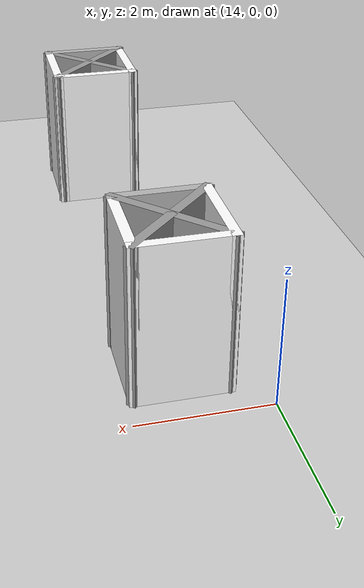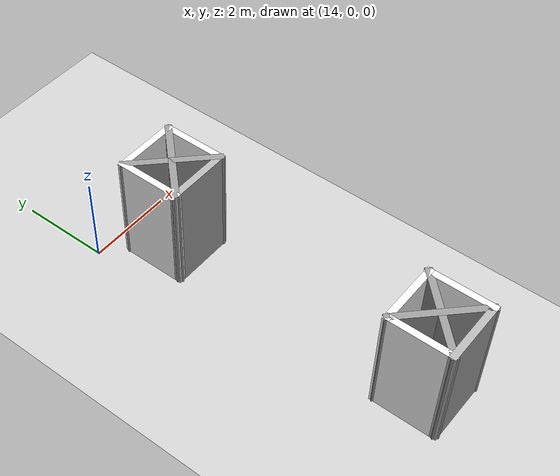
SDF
<sdf version="1.7">
 <world name="default">
  <model name="ground_plane">
   <static>1</static>
   <link name="link">
    <collision name="collision">
     <geometry><plane><normal>0 0 1</normal><size>100 100</size></plane></geometry>
     <surface>
      <contact><collide_bitmask>65535</collide_bitmask></contact>
      <friction><ode><mu>100</mu><mu2>50</mu2></ode></friction>
     </surface>
    </collision>
    <visual name="visual">
     <cast_shadows>0</cast_shadows>
     <geometry><plane><normal>0 0 1</normal><size>100 100</size></plane></geometry>
     <material>
      <script><uri>file://media/materials/scripts/gazebo.material</uri><name>Gazebo/Grey</name></script>
     </material>
    </visual>
   </link>
  </model>
  <model name="Untitled_1_clone_3_clone_clone_8">
   <link name="Wall_10">
    <pose>4.92197 -3.43197 0 0 -0 1.5708</pose>
    <inertial>
     <mass>1</mass>
     <inertia><ixx>1</ixx><ixy>0</ixy><ixz>0</ixz><iyy>1</iyy><iyz>0</iyz><izz>1</izz></inertia>
    </inertial>
    <visual name="Wall_10_Visual">
     <pose>0 0 1.25 0 -0 0</pose>
     <geometry><box><size>1.5 0.15 2.5</size></box></geometry>
     <material>
      <script><uri>file://media/materials/scripts/gazebo.material</uri><name>Gazebo/CoM</name></script>
      <ambient>1 1 1 1</ambient>
      <shader type="pixel"><normal_map>__default__</normal_map></shader>
      <diffuse>1 1 1 1</diffuse>
      <specular>0 0 0 1</specular>
      <emissive>0 0 0 1</emissive>
     </material>
     <meta><layer>0</layer></meta>
    </visual>
    <collision name="Wall_10_Collision">
     <pose>0 0 1.25 0 -0 0</pose>
     <geometry><box><size>1.5 0.15 2.5</size></box></geometry>
     <surface>
      <friction>
       <ode><mu>1</mu><mu2>1</mu2><fdir1>0 0 0</fdir1><slip1>0</slip1><slip2>0</slip2></ode>
       <torsional>
        <coefficient>1</coefficient>
        <patch_radius>0</patch_radius>
        <surface_radius>0</surface_radius>
        <use_patch_radius>1</use_patch_radius>
        <ode><slip>0</slip></ode>
       </torsional>
      </friction>
      <bounce><restitution_coefficient>0</restitution_coefficient><threshold>1e+06</threshold></bounce>
      <contact>
       <collide_without_contact>0</collide_without_contact>
       <collide_without_contact_bitmask>1</collide_without_contact_bitmask>
       <collide_bitmask>1</collide_bitmask>
       <ode>
        <soft_cfm>0</soft_cfm>
        <soft_erp>0.2</soft_erp>
        <kp>1e+13</kp>
        <kd>1</kd>
        <max_vel>0.01</max_vel>
        <min_depth>0</min_depth>
       </ode>
       <bullet>
        <split_impulse>1</split_impulse>
        <split_impulse_penetration_threshold>-0.01</split_impulse_penetration_threshold>
        <soft_cfm>0</soft_cfm>
        <soft_erp>0.2</soft_erp>
        <kp>1e+13</kp>
        <kd>1</kd>
       </bullet>
      </contact>
     </surface>
    </collision>
   </link>
   <link name="Wall_11">
    <pose>5.59697 -3.43197 0 0 0 -0.785398</pose>
    <visual name="Wall_11_Visual">
     <pose>0 0 1.25 0 -0 0</pose>
     <geometry><box><size>2.05919 0.15 2.5</size></box></geometry>
     <material>
      <script><uri>file://media/materials/scripts/gazebo.material</uri><name>Gazebo/Grey</name></script>
      <ambient>1 1 1 1</ambient>
      <shader type="pixel"/>
     </material>
     <meta><layer>0</layer></meta>
    </visual>
    <collision name="Wall_11_Collision">
     <pose>0 0 1.25 0 -0 0</pose>
     <geometry><box><size>2.05919 0.15 2.5</size></box></geometry>
     <surface>
      <friction>
       <ode><mu>1</mu><mu2>1</mu2><fdir1>0 0 0</fdir1><slip1>0</slip1><slip2>0</slip2></ode>
       <torsional>
        <coefficient>1</coefficient>
        <patch_radius>0</patch_radius>
        <surface_radius>0</surface_radius>
        <use_patch_radius>1</use_patch_radius>
        <ode><slip>0</slip></ode>
       </torsional>
      </friction>
      <bounce><restitution_coefficient>0</restitution_coefficient><threshold>1e+06</threshold></bounce>
      <contact>
       <collide_without_contact>0</collide_without_contact>
       <collide_without_contact_bitmask>1</collide_without_contact_bitmask>
       <collide_bitmask>1</collide_bitmask>
       <ode>
        <soft_cfm>0</soft_cfm>
        <soft_erp>0.2</soft_erp>
        <kp>1e+13</kp>
        <kd>1</kd>
        <max_vel>0.01</max_vel>
        <min_depth>0</min_depth>
       </ode>
       <bullet>
        <split_impulse>1</split_impulse>
        <split_impulse_penetration_threshold>-0.01</split_impulse_penetration_threshold>
        <soft_cfm>0</soft_cfm>
        <soft_erp>0.2</soft_erp>
        <kp>1e+13</kp>
        <kd>1</kd>
       </bullet>
      </contact>
     </surface>
    </collision>
   </link>
   <link name="Wall_13">
    <pose>5.59697 -3.43197 0 0 -0 0.785398</pose>
    <visual name="Wall_13_Visual">
     <pose>0 0 1.25 0 -0 0</pose>
     <geometry><box><size>2.05919 0.15 2.5</size></box></geometry>
     <material>
      <script><uri>file://media/materials/scripts/gazebo.material</uri><name>Gazebo/Grey</name></script>
      <ambient>1 1 1 1</ambient>
      <shader type="pixel"/>
     </material>
     <meta><layer>0</layer></meta>
    </visual>
    <collision name="Wall_13_Collision">
     <pose>0 0 1.25 0 -0 0</pose>
     <geometry><box><size>2.05919 0.15 2.5</size></box></geometry>
     <surface>
      <friction>
       <ode><mu>1</mu><mu2>1</mu2><fdir1>0 0 0</fdir1><slip1>0</slip1><slip2>0</slip2></ode>
       <torsional>
        <coefficient>1</coefficient>
        <patch_radius>0</patch_radius>
        <surface_radius>0</surface_radius>
        <use_patch_radius>1</use_patch_radius>
        <ode><slip>0</slip></ode>
       </torsional>
      </friction>
      <bounce><restitution_coefficient>0</restitution_coefficient><threshold>1e+06</threshold></bounce>
      <contact>
       <collide_without_contact>0</collide_without_contact>
       <collide_without_contact_bitmask>1</collide_without_contact_bitmask>
       <collide_bitmask>1</collide_bitmask>
       <ode>
        <soft_cfm>0</soft_cfm>
        <soft_erp>0.2</soft_erp>
        <kp>1e+13</kp>
        <kd>1</kd>
        <max_vel>0.01</max_vel>
        <min_depth>0</min_depth>
       </ode>
       <bullet>
        <split_impulse>1</split_impulse>
        <split_impulse_penetration_threshold>-0.01</split_impulse_penetration_threshold>
        <soft_cfm>0</soft_cfm>
        <soft_erp>0.2</soft_erp>
        <kp>1e+13</kp>
        <kd>1</kd>
       </bullet>
      </contact>
     </surface>
    </collision>
   </link>
   <link name="Wall_7">
    <pose>5.59697 -2.75697 0 0 -0 0</pose>
    <inertial>
     <mass>1</mass>
     <inertia><ixx>1</ixx><ixy>0</ixy><ixz>0</ixz><iyy>1</iyy><iyz>0</iyz><izz>1</izz></inertia>
    </inertial>
    <visual name="Wall_7_Visual">
     <pose>0 0 1.25 0 -0 0</pose>
     <geometry><box><size>1.5 0.15 2.5</size></box></geometry>
     <material>
      <script><uri>file://media/materials/scripts/gazebo.material</uri><name>Gazebo/CoM</name></script>
      <ambient>1 1 1 1</ambient>
      <shader type="pixel"><normal_map>__default__</normal_map></shader>
      <diffuse>1 1 1 1</diffuse>
      <specular>0 0 0 1</specular>
      <emissive>0 0 0 1</emissive>
     </material>
     <meta><layer>0</layer></meta>
    </visual>
    <collision name="Wall_7_Collision">
     <pose>0 0 1.25 0 -0 0</pose>
     <geometry><box><size>1.5 0.15 2.5</size></box></geometry>
     <surface>
      <friction>
       <ode><mu>1</mu><mu2>1</mu2><fdir1>0 0 0</fdir1><slip1>0</slip1><slip2>0</slip2></ode>
       <torsional>
        <coefficient>1</coefficient>
        <patch_radius>0</patch_radius>
        <surface_radius>0</surface_radius>
        <use_patch_radius>1</use_patch_radius>
        <ode><slip>0</slip></ode>
       </torsional>
      </friction>
      <bounce><restitution_coefficient>0</restitution_coefficient><threshold>1e+06</threshold></bounce>
      <contact>
       <collide_without_contact>0</collide_without_contact>
       <collide_without_contact_bitmask>1</collide_without_contact_bitmask>
       <collide_bitmask>1</collide_bitmask>
       <ode>
        <soft_cfm>0</soft_cfm>
        <soft_erp>0.2</soft_erp>
        <kp>1e+13</kp>
        <kd>1</kd>
        <max_vel>0.01</max_vel>
        <min_depth>0</min_depth>
       </ode>
       <bullet>
        <split_impulse>1</split_impulse>
        <split_impulse_penetration_threshold>-0.01</split_impulse_penetration_threshold>
        <soft_cfm>0</soft_cfm>
        <soft_erp>0.2</soft_erp>
        <kp>1e+13</kp>
        <kd>1</kd>
       </bullet>
      </contact>
     </surface>
    </collision>
   </link>
   <link name="Wall_8">
    <pose>6.27197 -3.43197 0 0 0 -1.5708</pose>
    <inertial>
     <mass>1</mass>
     <inertia><ixx>1</ixx><ixy>0</ixy><ixz>0</ixz><iyy>1</iyy><iyz>0</iyz><izz>1</izz></inertia>
    </inertial>
    <visual name="Wall_8_Visual">
     <pose>0 0 1.25 0 -0 0</pose>
     <geometry><box><size>1.5 0.15 2.5</size></box></geometry>
     <material>
      <script><uri>file://media/materials/scripts/gazebo.material</uri><name>Gazebo/CoM</name></script>
      <ambient>1 1 1 1</ambient>
      <shader type="pixel"><normal_map>__default__</normal_map></shader>
      <diffuse>1 1 1 1</diffuse>
      <specular>0 0 0 1</specular>
      <emissive>0 0 0 1</emissive>
     </material>
     <meta><layer>0</layer></meta>
    </visual>
    <collision name="Wall_8_Collision">
     <pose>0 0 1.25 0 -0 0</pose>
     <geometry><box><size>1.5 0.15 2.5</size></box></geometry>
     <surface>
      <friction>
       <ode><mu>1</mu><mu2>1</mu2><fdir1>0 0 0</fdir1><slip1>0</slip1><slip2>0</slip2></ode>
       <torsional>
        <coefficient>1</coefficient>
        <patch_radius>0</patch_radius>
        <surface_radius>0</surface_radius>
        <use_patch_radius>1</use_patch_radius>
        <ode><slip>0</slip></ode>
       </torsional>
      </friction>
      <bounce><restitution_coefficient>0</restitution_coefficient><threshold>1e+06</threshold></bounce>
      <contact>
       <collide_without_contact>0</collide_without_contact>
       <collide_without_contact_bitmask>1</collide_without_contact_bitmask>
       <collide_bitmask>1</collide_bitmask>
       <ode>
        <soft_cfm>0</soft_cfm>
        <soft_erp>0.2</soft_erp>
        <kp>1e+13</kp>
        <kd>1</kd>
        <max_vel>0.01</max_vel>
        <min_depth>0</min_depth>
       </ode>
       <bullet>
        <split_impulse>1</split_impulse>
        <split_impulse_penetration_threshold>-0.01</split_impulse_penetration_threshold>
        <soft_cfm>0</soft_cfm>
        <soft_erp>0.2</soft_erp>
        <kp>1e+13</kp>
        <kd>1</kd>
       </bullet>
      </contact>
     </surface>
    </collision>
   </link>
   <link name="Wall_9">
    <pose>5.59697 -4.10697 0 0 -0 3.14159</pose>
    <inertial>
     <mass>1</mass>
     <inertia><ixx>1</ixx><ixy>0</ixy><ixz>0</ixz><iyy>1</iyy><iyz>0</iyz><izz>1</izz></inertia>
    </inertial>
    <visual name="Wall_9_Visual">
     <pose>0 0 1.25 0 -0 0</pose>
     <geometry><box><size>1.5 0.15 2.5</size></box></geometry>
     <material>
      <script><uri>file://media/materials/scripts/gazebo.material</uri><name>Gazebo/CoM</name></script>
      <ambient>1 1 1 1</ambient>
      <shader type="pixel"><normal_map>__default__</normal_map></shader>
      <diffuse>0.7 0.7 0.7 1</diffuse>
      <specular>0.01 0.01 0.01 1</specular>
      <emissive>0 0 0 1</emissive>
     </material>
     <meta><layer>0</layer></meta>
    </visual>
    <collision name="Wall_9_Collision">
     <pose>0 0 1.25 0 -0 0</pose>
     <geometry><box><size>1.5 0.15 2.5</size></box></geometry>
     <surface>
      <friction>
       <ode><mu>1</mu><mu2>1</mu2><fdir1>0 0 0</fdir1><slip1>0</slip1><slip2>0</slip2></ode>
       <torsional>
        <coefficient>1</coefficient>
        <patch_radius>0</patch_radius>
        <surface_radius>0</surface_radius>
        <use_patch_radius>1</use_patch_radius>
        <ode><slip>0</slip></ode>
       </torsional>
      </friction>
      <bounce><restitution_coefficient>0</restitution_coefficient><threshold>1e+06</threshold></bounce>
      <contact>
       <collide_without_contact>0</collide_without_contact>
       <collide_without_contact_bitmask>1</collide_without_contact_bitmask>
       <collide_bitmask>1</collide_bitmask>
       <ode>
        <soft_cfm>0</soft_cfm>
        <soft_erp>0.2</soft_erp>
        <kp>1e+13</kp>
        <kd>1</kd>
        <max_vel>0.01</max_vel>
        <min_depth>0</min_depth>
       </ode>
       <bullet>
        <split_impulse>1</split_impulse>
        <split_impulse_penetration_threshold>-0.01</split_impulse_penetration_threshold>
        <soft_cfm>0</soft_cfm>
        <soft_erp>0.2</soft_erp>
        <kp>1e+13</kp>
        <kd>1</kd>
       </bullet>
      </contact>
     </surface>
    </collision>
   </link>
   <static>1</static>
   <pose>9.67633 -3.8493 0 0 -0 0</pose>
  </model>
  <model name="Untitled_1_clone_3_clone_clone_10">
   <link name="Wall_10">
    <pose>4.92197 -3.43197 0 0 -0 1.5708</pose>
    <inertial>
     <mass>1</mass>
     <inertia><ixx>1</ixx><ixy>0</ixy><ixz>0</ixz><iyy>1</iyy><iyz>0</iyz><izz>1</izz></inertia>
    </inertial>
    <visual name="Wall_10_Visual">
     <pose>0 0 1.25 0 -0 0</pose>
     <geometry><box><size>1.5 0.15 2.5</size></box></geometry>
     <material>
      <script><uri>file://media/materials/scripts/gazebo.material</uri><name>Gazebo/CoM</name></script>
      <ambient>1 1 1 1</ambient>
      <shader type="pixel"><normal_map>__default__</normal_map></shader>
      <diffuse>1 1 1 1</diffuse>
      <specular>0 0 0 1</specular>
      <emissive>0 0 0 1</emissive>
     </material>
     <meta><layer>0</layer></meta>
    </visual>
    <collision name="Wall_10_Collision">
     <pose>0 0 1.25 0 -0 0</pose>
     <geometry><box><size>1.5 0.15 2.5</size></box></geometry>
     <surface>
      <friction>
       <ode><mu>1</mu><mu2>1</mu2><fdir1>0 0 0</fdir1><slip1>0</slip1><slip2>0</slip2></ode>
       <torsional>
        <coefficient>1</coefficient>
        <patch_radius>0</patch_radius>
        <surface_radius>0</surface_radius>
        <use_patch_radius>1</use_patch_radius>
        <ode><slip>0</slip></ode>
       </torsional>
      </friction>
      <bounce><restitution_coefficient>0</restitution_coefficient><threshold>1e+06</threshold></bounce>
      <contact>
       <collide_without_contact>0</collide_without_contact>
       <collide_without_contact_bitmask>1</collide_without_contact_bitmask>
       <collide_bitmask>1</collide_bitmask>
       <ode>
        <soft_cfm>0</soft_cfm>
        <soft_erp>0.2</soft_erp>
        <kp>1e+13</kp>
        <kd>1</kd>
        <max_vel>0.01</max_vel>
        <min_depth>0</min_depth>
       </ode>
       <bullet>
        <split_impulse>1</split_impulse>
        <split_impulse_penetration_threshold>-0.01</split_impulse_penetration_threshold>
        <soft_cfm>0</soft_cfm>
        <soft_erp>0.2</soft_erp>
        <kp>1e+13</kp>
        <kd>1</kd>
       </bullet>
      </contact>
     </surface>
    </collision>
   </link>
   <link name="Wall_11">
    <pose>5.59697 -3.43197 0 0 0 -0.785398</pose>
    <visual name="Wall_11_Visual">
     <pose>0 0 1.25 0 -0 0</pose>
     <geometry><box><size>2.05919 0.15 2.5</size></box></geometry>
     <material>
      <script><uri>file://media/materials/scripts/gazebo.material</uri><name>Gazebo/Grey</name></script>
      <ambient>1 1 1 1</ambient>
      <shader type="pixel"/>
     </material>
     <meta><layer>0</layer></meta>
    </visual>
    <collision name="Wall_11_Collision">
     <pose>0 0 1.25 0 -0 0</pose>
     <geometry><box><size>2.05919 0.15 2.5</size></box></geometry>
     <surface>
      <friction>
       <ode><mu>1</mu><mu2>1</mu2><fdir1>0 0 0</fdir1><slip1>0</slip1><slip2>0</slip2></ode>
       <torsional>
        <coefficient>1</coefficient>
        <patch_radius>0</patch_radius>
        <surface_radius>0</surface_radius>
        <use_patch_radius>1</use_patch_radius>
        <ode><slip>0</slip></ode>
       </torsional>
      </friction>
      <bounce><restitution_coefficient>0</restitution_coefficient><threshold>1e+06</threshold></bounce>
      <contact>
       <collide_without_contact>0</collide_without_contact>
       <collide_without_contact_bitmask>1</collide_without_contact_bitmask>
       <collide_bitmask>1</collide_bitmask>
       <ode>
        <soft_cfm>0</soft_cfm>
        <soft_erp>0.2</soft_erp>
        <kp>1e+13</kp>
        <kd>1</kd>
        <max_vel>0.01</max_vel>
        <min_depth>0</min_depth>
       </ode>
       <bullet>
        <split_impulse>1</split_impulse>
        <split_impulse_penetration_threshold>-0.01</split_impulse_penetration_threshold>
        <soft_cfm>0</soft_cfm>
        <soft_erp>0.2</soft_erp>
        <kp>1e+13</kp>
        <kd>1</kd>
       </bullet>
      </contact>
     </surface>
    </collision>
   </link>
   <link name="Wall_13">
    <pose>5.59697 -3.43197 0 0 -0 0.785398</pose>
    <visual name="Wall_13_Visual">
     <pose>0 0 1.25 0 -0 0</pose>
     <geometry><box><size>2.05919 0.15 2.5</size></box></geometry>
     <material>
      <script><uri>file://media/materials/scripts/gazebo.material</uri><name>Gazebo/Grey</name></script>
      <ambient>1 1 1 1</ambient>
      <shader type="pixel"/>
     </material>
     <meta><layer>0</layer></meta>
    </visual>
    <collision name="Wall_13_Collision">
     <pose>0 0 1.25 0 -0 0</pose>
     <geometry><box><size>2.05919 0.15 2.5</size></box></geometry>
     <surface>
      <friction>
       <ode><mu>1</mu><mu2>1</mu2><fdir1>0 0 0</fdir1><slip1>0</slip1><slip2>0</slip2></ode>
       <torsional>
        <coefficient>1</coefficient>
        <patch_radius>0</patch_radius>
        <surface_radius>0</surface_radius>
        <use_patch_radius>1</use_patch_radius>
        <ode><slip>0</slip></ode>
       </torsional>
      </friction>
      <bounce><restitution_coefficient>0</restitution_coefficient><threshold>1e+06</threshold></bounce>
      <contact>
       <collide_without_contact>0</collide_without_contact>
       <collide_without_contact_bitmask>1</collide_without_contact_bitmask>
       <collide_bitmask>1</collide_bitmask>
       <ode>
        <soft_cfm>0</soft_cfm>
        <soft_erp>0.2</soft_erp>
        <kp>1e+13</kp>
        <kd>1</kd>
        <max_vel>0.01</max_vel>
        <min_depth>0</min_depth>
       </ode>
       <bullet>
        <split_impulse>1</split_impulse>
        <split_impulse_penetration_threshold>-0.01</split_impulse_penetration_threshold>
        <soft_cfm>0</soft_cfm>
        <soft_erp>0.2</soft_erp>
        <kp>1e+13</kp>
        <kd>1</kd>
       </bullet>
      </contact>
     </surface>
    </collision>
   </link>
   <link name="Wall_7">
    <pose>5.59697 -2.75697 0 0 -0 0</pose>
    <inertial>
     <mass>1</mass>
     <inertia><ixx>1</ixx><ixy>0</ixy><ixz>0</ixz><iyy>1</iyy><iyz>0</iyz><izz>1</izz></inertia>
    </inertial>
    <visual name="Wall_7_Visual">
     <pose>0 0 1.25 0 -0 0</pose>
     <geometry><box><size>1.5 0.15 2.5</size></box></geometry>
     <material>
      <script><uri>file://media/materials/scripts/gazebo.material</uri><name>Gazebo/CoM</name></script>
      <ambient>1 1 1 1</ambient>
      <shader type="pixel"><normal_map>__default__</normal_map></shader>
      <diffuse>1 1 1 1</diffuse>
      <specular>0 0 0 1</specular>
      <emissive>0 0 0 1</emissive>
     </material>
     <meta><layer>0</layer></meta>
    </visual>
    <collision name="Wall_7_Collision">
     <pose>0 0 1.25 0 -0 0</pose>
     <geometry><box><size>1.5 0.15 2.5</size></box></geometry>
     <surface>
      <friction>
       <ode><mu>1</mu><mu2>1</mu2><fdir1>0 0 0</fdir1><slip1>0</slip1><slip2>0</slip2></ode>
       <torsional>
        <coefficient>1</coefficient>
        <patch_radius>0</patch_radius>
        <surface_radius>0</surface_radius>
        <use_patch_radius>1</use_patch_radius>
        <ode><slip>0</slip></ode>
       </torsional>
      </friction>
      <bounce><restitution_coefficient>0</restitution_coefficient><threshold>1e+06</threshold></bounce>
      <contact>
       <collide_without_contact>0</collide_without_contact>
       <collide_without_contact_bitmask>1</collide_without_contact_bitmask>
       <collide_bitmask>1</collide_bitmask>
       <ode>
        <soft_cfm>0</soft_cfm>
        <soft_erp>0.2</soft_erp>
        <kp>1e+13</kp>
        <kd>1</kd>
        <max_vel>0.01</max_vel>
        <min_depth>0</min_depth>
       </ode>
       <bullet>
        <split_impulse>1</split_impulse>
        <split_impulse_penetration_threshold>-0.01</split_impulse_penetration_threshold>
        <soft_cfm>0</soft_cfm>
        <soft_erp>0.2</soft_erp>
        <kp>1e+13</kp>
        <kd>1</kd>
       </bullet>
      </contact>
     </surface>
    </collision>
   </link>
   <link name="Wall_8">
    <pose>6.27197 -3.43197 0 0 0 -1.5708</pose>
    <inertial>
     <mass>1</mass>
     <inertia><ixx>1</ixx><ixy>0</ixy><ixz>0</ixz><iyy>1</iyy><iyz>0</iyz><izz>1</izz></inertia>
    </inertial>
    <visual name="Wall_8_Visual">
     <pose>0 0 1.25 0 -0 0</pose>
     <geometry><box><size>1.5 0.15 2.5</size></box></geometry>
     <material>
      <script><uri>file://media/materials/scripts/gazebo.material</uri><name>Gazebo/CoM</name></script>
      <ambient>1 1 1 1</ambient>
      <shader type="pixel"><normal_map>__default__</normal_map></shader>
      <diffuse>1 1 1 1</diffuse>
      <specular>0 0 0 1</specular>
      <emissive>0 0 0 1</emissive>
     </material>
     <meta><layer>0</layer></meta>
    </visual>
    <collision name="Wall_8_Collision">
     <pose>0 0 1.25 0 -0 0</pose>
     <geometry><box><size>1.5 0.15 2.5</size></box></geometry>
     <surface>
      <friction>
       <ode><mu>1</mu><mu2>1</mu2><fdir1>0 0 0</fdir1><slip1>0</slip1><slip2>0</slip2></ode>
       <torsional>
        <coefficient>1</coefficient>
        <patch_radius>0</patch_radius>
        <surface_radius>0</surface_radius>
        <use_patch_radius>1</use_patch_radius>
        <ode><slip>0</slip></ode>
       </torsional>
      </friction>
      <bounce><restitution_coefficient>0</restitution_coefficient><threshold>1e+06</threshold></bounce>
      <contact>
       <collide_without_contact>0</collide_without_contact>
       <collide_without_contact_bitmask>1</collide_without_contact_bitmask>
       <collide_bitmask>1</collide_bitmask>
       <ode>
        <soft_cfm>0</soft_cfm>
        <soft_erp>0.2</soft_erp>
        <kp>1e+13</kp>
        <kd>1</kd>
        <max_vel>0.01</max_vel>
        <min_depth>0</min_depth>
       </ode>
       <bullet>
        <split_impulse>1</split_impulse>
        <split_impulse_penetration_threshold>-0.01</split_impulse_penetration_threshold>
        <soft_cfm>0</soft_cfm>
        <soft_erp>0.2</soft_erp>
        <kp>1e+13</kp>
        <kd>1</kd>
       </bullet>
      </contact>
     </surface>
    </collision>
   </link>
   <link name="Wall_9">
    <pose>5.59697 -4.10697 0 0 -0 3.14159</pose>
    <inertial>
     <mass>1</mass>
     <inertia><ixx>1</ixx><ixy>0</ixy><ixz>0</ixz><iyy>1</iyy><iyz>0</iyz><izz>1</izz></inertia>
    </inertial>
    <visual name="Wall_9_Visual">
     <pose>0 0 1.25 0 -0 0</pose>
     <geometry><box><size>1.5 0.15 2.5</size></box></geometry>
     <material>
      <script><uri>file://media/materials/scripts/gazebo.material</uri><name>Gazebo/CoM</name></script>
      <ambient>1 1 1 1</ambient>
      <shader type="pixel"><normal_map>__default__</normal_map></shader>
      <diffuse>0.7 0.7 0.7 1</diffuse>
      <specular>0.01 0.01 0.01 1</specular>
      <emissive>0 0 0 1</emissive>
     </material>
     <meta><layer>0</layer></meta>
    </visual>
    <collision name="Wall_9_Collision">
     <pose>0 0 1.25 0 -0 0</pose>
     <geometry><box><size>1.5 0.15 2.5</size></box></geometry>
     <surface>
      <friction>
       <ode><mu>1</mu><mu2>1</mu2><fdir1>0 0 0</fdir1><slip1>0</slip1><slip2>0</slip2></ode>
       <torsional>
        <coefficient>1</coefficient>
        <patch_radius>0</patch_radius>
        <surface_radius>0</surface_radius>
        <use_patch_radius>1</use_patch_radius>
        <ode><slip>0</slip></ode>
       </torsional>
      </friction>
      <bounce><restitution_coefficient>0</restitution_coefficient><threshold>1e+06</threshold></bounce>
      <contact>
       <collide_without_contact>0</collide_without_contact>
       <collide_without_contact_bitmask>1</collide_without_contact_bitmask>
       <collide_bitmask>1</collide_bitmask>
       <ode>
        <soft_cfm>0</soft_cfm>
        <soft_erp>0.2</soft_erp>
        <kp>1e+13</kp>
        <kd>1</kd>
        <max_vel>0.01</max_vel>
        <min_depth>0</min_depth>
       </ode>
       <bullet>
        <split_impulse>1</split_impulse>
        <split_impulse_penetration_threshold>-0.01</split_impulse_penetration_threshold>
        <soft_cfm>0</soft_cfm>
        <soft_erp>0.2</soft_erp>
        <kp>1e+13</kp>
        <kd>1</kd>
       </bullet>
      </contact>
     </surface>
    </collision>
   </link>
   <static>1</static>
   <pose>9.62093 2.30046 0 0 -0 0</pose>
  </model>
 </world>
</sdf>
